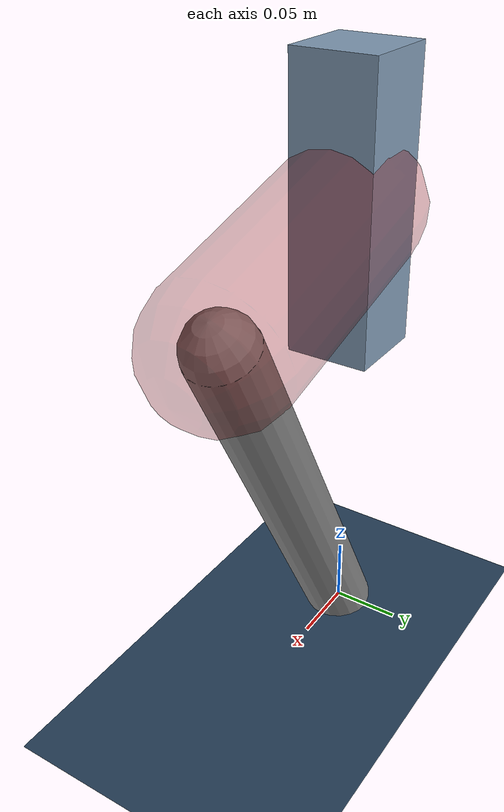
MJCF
<mujoco model="Hopper2D">
	<compiler inertiafromgeom="true" angle="radian" />
	<option timestep="0.001" integrator="implicit" cone="elliptic" solver="Newton" tolerance="1e-10" />

	<default>
		<geom contype="1" conaffinity="1" condim="3" friction="2 0.005 0.0001" solref="0.005 1" />
		<joint limited="true" damping="0.1" />
	</default>

	<asset>
		<texture name="skybox" type="skybox" builtin="gradient" rgb1=".4 .6 .8" rgb2="0 0 0" width="800" height="800" />
		<texture name="grid" type="2d" builtin="checker" rgb1=".1 .2 .3" rgb2=".2 .3 .4" width="300" height="300" mark="edge" markrgb=".2 .3 .4" />
		<material name="ground" texture="grid" texrepeat="1 1" texuniform="true" reflectance="0.1" />
		<material name="leg" rgba="0.5 0.6 0.7 1" />
	</asset>

	<worldbody>

		<geom name="floor" type="plane" size="5 5 0.25" material="ground" />

		<light directional="false" diffuse="0.8 0.8 0.8" specular="0.3 0.3 0.3" pos="0 0 2" dir="0 0 -1" />
		<light mode="targetbodycom" target="base" directional="false" diffuse="0.8 0.8 0.8" specular="0.3 0.3 0.3" pos="0 0 2" dir="0 0 -1" />

		<camera name="fixed" pos="0 -2 1" xyaxes="1 0 0 0 0 1" />
		<camera name="tracking" mode="trackcom" pos="0 -3 1" />

		<body name="root" pos="0 0 0.33200627144568634">
			<joint name="slide_x" type="slide" axis="1 0 0" range="-100 100" />
			<joint name="slide_z" type="slide" axis="0 0 1" range="0 10" />

			<body name="base" pos="0 0 0">
				<geom name="torso" type="box" size="0.03 0.03 0.1" mass="2.612" material="leg" />

				<body name="link1" pos="0 0 0" euler="0 0.2771452951014506 0">
					<joint type="hinge" axis="0 -1 0" pos="0 0 0" name="hinge1" limited="true" range="-3.14 3.14" stiffness="0" damping="0.1" />
					<geom name="thigh" type="capsule" fromto="0 0 0 0.15259636392367623 0 0" size="0.05" rgba="0.5 0 0 0.3" mass="0.614631273416823" />

					<body name="link2" pos="0.15259636392367623 0 0" euler="0 1.761825710339876 0">
						<joint type="hinge" axis="0 -1 0" pos="0 0 0" name="hinge2" limited="true" range="-3.14 3.14" stiffness="0" damping="0.1" />
						<geom name="shank" type="capsule" fromto="0 0 0 0.32525364591690026 0 0" size="0.025" mass="0.5039029167335202" />

					</body>
				</body>
			</body>
		</body>
	</worldbody>

	<actuator>
		<motor name="torque1" joint="hinge1" ctrlrange="-137.9196337630877 137.9196337630877" ctrllimited="true" gear="1" />
		<motor name="torque2" joint="hinge2" ctrlrange="-21.676273536346905 21.676273536346905" ctrllimited="true" gear="1" />
	</actuator>
</mujoco>
